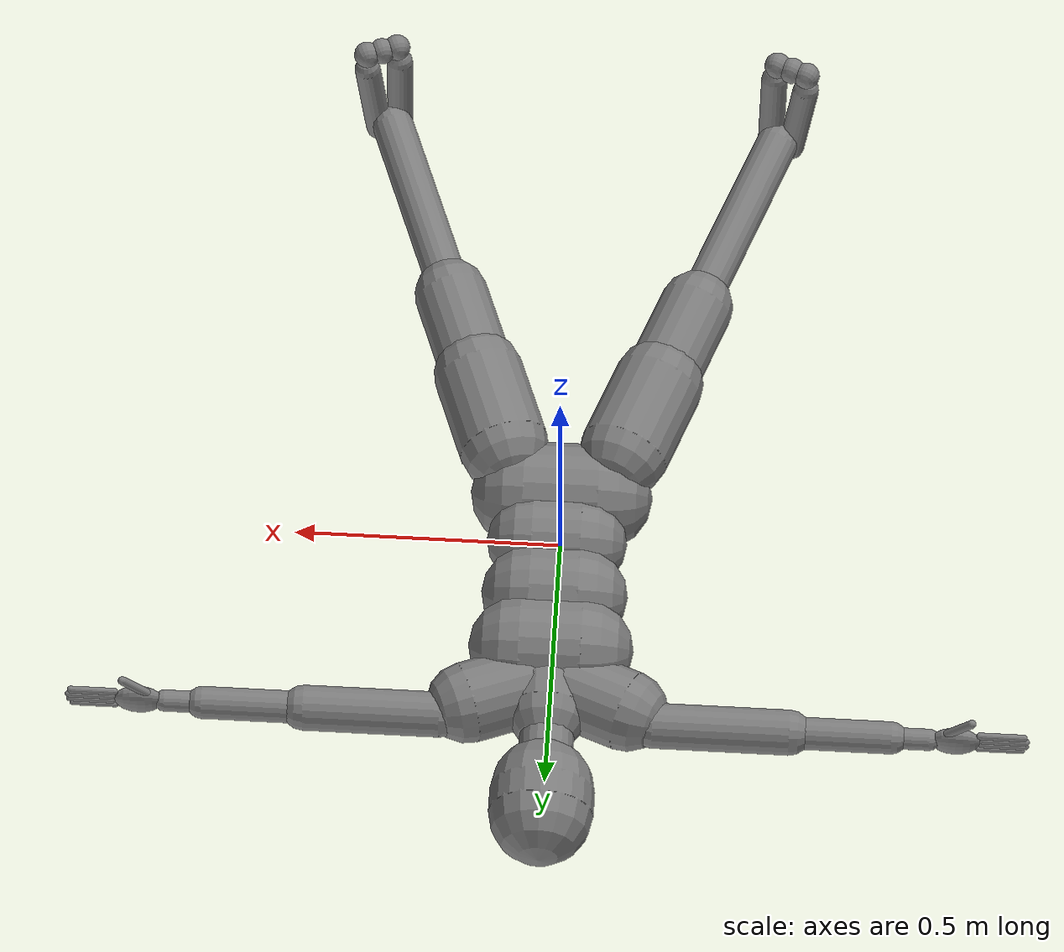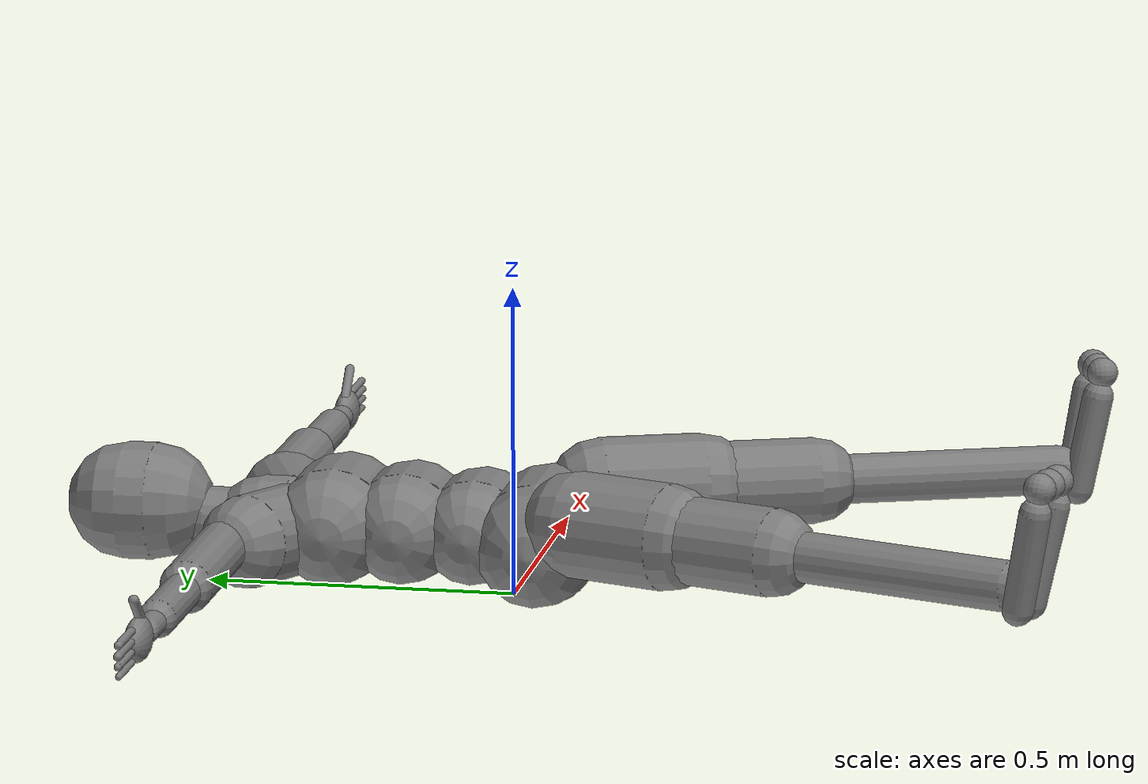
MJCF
<mujoco model="HumanoidCMU">
  <compiler angle="radian"/>

  <asset>
    <material name="self" rgba=".7 .5 .3 1"/>
  </asset>

  <default>
    <joint limited="true" solimplimit="0 0.99 0.01" stiffness="1" armature=".01" damping="1"/>
    <geom size="0.03 0 0" condim="1" friction="0.7 0.005 0.0001" solref="0.015 1" solimp="0.99 0.99 0.003"/>
    <general ctrllimited="true" ctrlrange="-1 1"/>
    <default class="humanoid">
      <geom type="capsule" group="2"/>
      <default class="stiff_medium">
        <joint stiffness="10" damping="2"/>
      </default>
      <default class="stiff_medium_higher">
        <joint stiffness="50" damping="4"/>
      </default>
      <default class="stiff_high">
        <joint stiffness="200" damping="5"/>
      </default>
      <default class="sensor_site">
        <site type="sphere" size="0.01" group="4" rgba="1 0 0 .5"/>
      </default>
      <default class="contact">
        <geom condim="3" friction="1. 0.005 0.0001" solref="0.015 1" solimp="0.98 0.98 0.001" priority="1"/>
      </default>
      <default class="tracking_site">
        <site type="sphere" size="0.027" rgba="1 0 0 1" group="3"/>
      </default>
    </default>
  </default>
  <worldbody>
    <body name="root" childclass="humanoid" pos="0 0 0.1">
      <light name="tracking_light" pos="0 0 7" dir="0 0 -1" mode="trackcom"/>
      <camera name="back" pos="0 3 1.4" xyaxes="-1 0 0 0 -1 2" mode="trackcom"/>
      <camera name="side" pos="-3 0 1.4" xyaxes="0 -1 0 1 0 2" mode="trackcom"/>
      <camera name="front_side" pos="-2 -2 0.5" xyaxes="0.5 -0.5 0 0.1 0.1 1" mode="trackcom"/>
      <camera name="bodycam" pos="0 .3 .1" xyaxes="-1 0 0 0 1 0" fovy="80"/>
      <site name="root" size="0.05" class="tracking_site" pos="0 -0.0121 0"/>
      <geom name="root_geom" size="0.1 0.07" pos="0 -0.05 0" quat="1 0 -1 0"/>
      <body name="lhipjoint">
        <geom name="lhipjoint" size="0.008 0.02187363" pos="0.0509685 -0.0459037 0.024723" quat="0.5708 -0.566602 -0.594264 0"/>
        <site class="tracking_site" name="tracking[lhip]" pos="0.07 -0.102 0.01"/>
        <body name="lfemur" pos="0.101937 -0.0918074 0.0494461" quat="0.984808 0 0 0.173648">
          <joint name="lfemurrz" pos="0 0 0" axis="0 0 1" range="-1.0472 1.22173" class="stiff_medium"/>
          <joint name="lfemurry" pos="0 0 0" axis="0 1 0" range="-1.22173 1.22173" class="stiff_medium"/>
          <joint name="lfemurrx" pos="0 0 0" axis="1 0 0" range="-2.79253 0.349066" class="stiff_medium"/>
          <geom name="lfemur_upper" size="0.085 0.083" pos="0 -0.115473 0" quat="0.696364 -0.696364 -0.122788 -0.122788" mass="0"/>
          <geom name="lfemur" size="0.07 0.182226" pos="0 -0.202473 0" quat="0.696364 -0.696364 -0.122788 -0.122788"/>
          <site class="tracking_site" name="tracking[ltibia]" pos="0.0 -0.385 0.0"/>
          <body name="ltibia" pos="0 -0.404945 0">
            <joint name="ltibiarx" pos="0 0 0" axis="1 0 0" range="0.01 2.96706"/>
            <geom name="ltibia" size="0.04 0.1825614" pos="0 -0.202846 0" quat="0.696364 -0.696364 -0.122788 -0.122788"/>
            <site class="tracking_site" name="tracking[lfoot]" pos="0.0 -0.385 0.0"/>
            <body name="lfoot" pos="0 -0.415693 0" quat="1 -1 0 0">
              <site name="lfoot_touch" type="capsule" pos="0.0 0.02 -0.015" size="0.025 0.01" zaxis="1 0 0" class="sensor_site"/>
              <joint name="lfootrz" pos="0 0 0" axis="0 0 1" range="-1.22173 0.349066" class="stiff_medium"/>
              <joint name="lfootrx" pos="0 0 0" axis="1 0 0" range="-0.785398 0.8" class="stiff_medium"/>
              <geom name="lfoot" size="0.025 0.08" pos="-0.0269999975006 -0.05 -0.0113878" quat=" 0.76725516 -0.64051114  0.02306487 -0.02306583" class="contact"/>
              <geom name="lfoot_ch" size="0.025 0.08" pos="0.0270000024994 -0.05 -0.0113878" quat=" 0.72887266 -0.59399462 -0.24074283 -0.2407425 " class="contact"/>
              <site class="tracking_site" name="tracking[ltoes]" pos="0.0 -0.136 -0.023"/>
              <body name="ltoes" pos="0 -0.156372 -0.0227756">
                <joint name="ltoesrx" pos="0 0 0" axis="1 0 0" range="-1.5708 0.349066"/>
                <geom name="ltoes0" type="sphere" size="0.025" pos="0 -0.01 -.01" class="contact"/>
                <geom name="ltoes1" type="sphere" size="0.025" pos=".03 -0.01 -.01" class="contact"/>
                <geom name="ltoes2" type="sphere" size="0.025" pos="-.03 -0.01 -.01" class="contact"/>
                <site name="ltoes_touch" type="capsule" pos="0.0 -0.01 -0.02" size="0.025 0.03" zaxis="1 0 0" class="sensor_site"/>
              </body>
            </body>
          </body>
        </body>
      </body>
      <body name="rhipjoint">
        <geom name="rhipjoint" size="0.008 0.02187363" pos="-0.0509685 -0.0459037 0.024723" quat="0.574856 -0.547594 0.608014 0"/>
        <site class="tracking_site" name="tracking[rhip]" pos="-0.07 -0.102 0.01"/>
        <body name="rfemur" pos="-0.101937 -0.0918074 0.0494461" quat="0.984808 0 0 -0.173648">
          <joint name="rfemurrz" pos="0 0 0" axis="0 0 1" range="-1.22173 1.0472" class="stiff_medium"/>
          <joint name="rfemurry" pos="0 0 0" axis="0 1 0" range="-1.22173 1.22173" class="stiff_medium"/>
          <joint name="rfemurrx" pos="0 0 0" axis="1 0 0" range="-2.79253 0.349066" class="stiff_medium"/>
          <geom name="rfemur_upper" size="0.085 0.083" pos="0 -0.115473 0" quat="0.696364 -0.696364 0.122788 0.122788" mass="0"/>
          <geom name="rfemur" size="0.07 0.182226" pos="0 -0.202473 0" quat="0.696364 -0.696364 0.122788 0.122788"/>
          <site class="tracking_site" name="tracking[rtibia]" pos="0.0 -0.385 0.0"/>
          <body name="rtibia" pos="0 -0.404945 0">
            <joint name="rtibiarx" pos="0 0 0" axis="1 0 0" range="0.01 2.96706"/>
            <geom name="rtibia" size="0.04 0.1825614" pos="0 -0.202846 0" quat="0.696364 -0.696364 0.122788 0.122788"/>
            <site class="tracking_site" name="tracking[rfoot]" pos="0.0 -0.385 0.0"/>
            <body name="rfoot" pos="0 -0.415693 0" quat="0.707107 -0.707107 0 0">
              <site name="rfoot_touch" type="capsule" pos="0.0 0.02 -0.015" size="0.025 0.01" zaxis="1 0 0" class="sensor_site"/>
              <joint name="rfootrz" pos="0 0 0" axis="0 0 1" range="-0.349066 1.22173" class="stiff_medium"/>
              <joint name="rfootrx" pos="0 0 0" axis="1 0 0" range="-0.785398 .8" class="stiff_medium"/>
              <geom name="rfoot" size="0.025 0.08" pos="-0.0269999965316 -0.05 -0.0113878" quat=" 0.73520687 -0.58633523  0.24050108  0.24050079" class="contact"/>
              <geom name="rfoot_ch" size="0.025 0.08" pos="0.0270000034684 -0.05 -0.0113878" quat=" 0.77312469 -0.633231   -0.02545846  0.02545836" class="contact"/>
              <site class="tracking_site" name="tracking[rtoes]" pos="0.0 -0.136 -0.023"/>
              <body name="rtoes" pos="0 -0.156372 -0.0227756">
                <joint name="rtoesrx" pos="0 0 0" axis="1 0 0" range="-1.5708 0.349066"/>
                <geom name="rtoes0" type="sphere" size="0.025" pos="0 -0.01 -.01" class="contact"/>
                <geom name="rtoes1" type="sphere" size="0.025" pos=".03 -0.01 -.01" class="contact"/>
                <geom name="rtoes2" type="sphere" size="0.025" pos="-.03 -0.01 -.01" class="contact"/>
                <site name="rtoes_touch" type="capsule" pos="0.0 -0.01 -0.02" size="0.025 0.03" zaxis="1 0 0" class="sensor_site"/>
              </body>
            </body>
          </body>
        </body>
      </body>
      <body name="lowerback">
        <joint name="lowerbackrz" pos="0 0 0" axis="0 0 1" range="-0.523599 0.523599" class="stiff_high"/>
        <joint name="lowerbackry" pos="0 0 0" axis="0 1 0" range="-0.523599 0.523599" class="stiff_high"/>
        <joint name="lowerbackrx" pos="0 0 0" axis="1 0 0" range="-0.349066 0.785398" class="stiff_medium"/>
        <geom name="lowerback" size="0.085 0.04540016" pos="0.00282931 0.0566065 0.01" quat="1 0 1 0"/>
        <body name="upperback" pos="0.000565862 0.113213 -0.00805298">
          <joint name="upperbackrz" pos="0 0 0" axis="0 0 1" range="-0.523599 0.523599" class="stiff_high"/>
          <joint name="upperbackry" pos="0 0 0" axis="0 1 0" range="-0.523599 0.523599" class="stiff_high"/>
          <joint name="upperbackrx" pos="0 0 0" axis="1 0 0" range="-0.349066 0.785398" class="stiff_medium"/>
          <geom name="upperback" size="0.09 0.04542616" pos="0.000256264 0.0567802 0.02" quat="1 0 1 0"/>
          <body name="thorax" pos="0.000512528 0.11356 0.000936821">
            <joint name="thoraxrz" pos="0 0 0" axis="0 0 1" range="-0.523599 0.523599" class="stiff_high"/>
            <joint name="thoraxry" pos="0 0 0" axis="0 1 0" range="-0.523599 0.523599" class="stiff_high"/>
            <joint name="thoraxrx" pos="0 0 0" axis="1 0 0" range="-0.349066 0.785398" class="stiff_medium"/>
            <geom name="thorax" size="0.095 0.0570206" pos="0 0.0569725 0.02" quat="1 0 1 0"/>
            <body name="lowerneck" pos="0 0.113945 0.00468037">
              <joint name="lowerneckrz" pos="0 0 0" axis="0 0 1" range="-0.523599 0.523599" class="stiff_medium_higher"/>
              <joint name="lowerneckry" pos="0 0 0" axis="0 1 0" range="-0.523599 0.523599" class="stiff_medium_higher"/>
              <joint name="lowerneckrx" pos="0 0 0" axis="1 0 0" range="-0.349066 0.785398" class="stiff_medium_higher"/>
              <geom name="lowerneck" size="0.075 0.02279225" pos="-0.00165071 0.0452401 0.00534359" quat="1 1 0 0"/>
              <body name="upperneck" pos="-0.00330143 0.0904801 0.0106872">
                <joint name="upperneckrz" pos="0 0 0" axis="0 0 1" range="-0.523599 0.523599" class="stiff_medium_higher"/>
                <joint name="upperneckry" pos="0 0 0" axis="0 1 0" range="-0.523599 0.523599" class="stiff_medium_higher"/>
                <joint name="upperneckrx" pos="0 0 0" axis="1 0 0" range="-0.349066 0.785398" class="stiff_medium_higher"/>
                <geom name="upperneck" size="0.05 0.0225272" pos="0.000500875 0.0449956 -0.00224644" quat="1 1 0 0"/>
                <body name="head" pos="0.00100175 0.13 -0.00449288">
                  <site class="tracking_site" name="tracking[head]" pos="0 0 0.1"/>
                  <camera name="egocentric" pos="0 0 0" xyaxes="-1 0 0 0 1 0" fovy="80"/>
                  <joint name="headrz" pos="0 0 0" axis="0 0 1" range="-0.523599 0.523599" class="stiff_medium_higher"/>
                  <joint name="headry" pos="0 0 0" axis="0 1 0" range="-0.523599 0.523599" class="stiff_medium_higher"/>
                  <joint name="headrx" pos="0 0 0" axis="1 0 0" range="-0.349066 0.785398" class="stiff_medium_higher"/>
                  <geom name="head" size="0.095 0.024104" pos="0.000341465 0.048184 0.025" quat="1 1 0 0"/>
                </body>
              </body>
            </body>
            <body name="lclavicle" pos="0 0.113945 0.00468037">
              <joint name="lclaviclerz" pos="0 0 0" axis="0 0 1" range="0 0.349066" class="stiff_high"/>
              <joint name="lclaviclery" pos="0 0 0" axis="0 1 0" range="-0.349066 0.174533" class="stiff_high"/>
              <geom name="lclavicle" size="0.075 0.06" pos="0.0918817 0.0382636 0.00535704" quat="0.688 0.279 -0.67 0"/>
              <site class="tracking_site" name="tracking[lhumerus]" pos="0.178 0.057 0.015"/>
              <body name="lhumerus" pos="0.18 0.09 0.0107141" quat="0.183013 0.683013 -0.683013 0.183013">
                <joint name="lhumerusrz" pos="0 0 0" axis="0 0 1" range="-1.1 1.5708" class="stiff_medium"/>
                <joint name="lhumerusry" pos="0 0 0" axis="0 1 0" range="-1.5708 1.5708" class="stiff_medium"/>
                <joint name="lhumerusrx" pos="0 0 0" axis="1 0 0" range="-1.0472 1.5708" class="stiff_medium"/>
                <site name="lhumerus_ft" class="sensor_site"/>
                <geom name="lhumerus" size="0.042 0.1245789" pos="0 -0.138421 0" quat="0.612372 -0.612372 0.353553 0.353553"/>
                <site class="tracking_site" name="tracking[lradius]" pos="0.0 -0.29 0.0"/>
                <body name="lradius" pos="0 -0.276843 0">
                  <joint name="lradiusrx" pos="0 0 0" axis="1 0 0" range="-0.174533 2.96706"/>
                  <geom name="lradius" size="0.03 0.08169111" pos="0 -0.0907679 0" quat="0.612372 -0.612372 0.353553 0.353553"/>
                  <site name="lwrist" pos="0 -0.181536 0" quat="-0.5 0 0.866025 0"/>
                  <body name="lwrist" pos="0 -0.181536 0" quat="-0.5 0 0.866025 0">
                    <joint name="lwristry" pos="0 0 0" axis="0 1 0" range="0 3.14159"/>
                    <geom name="lwrist" size="0.02 0.03" pos="0 -0.03 0" quat="1.59389e-11 -1.59388e-11 -0.707107 -0.707107"/>
                    <site class="tracking_site" name="tracking[lhand]" pos="0.0 -0.091 0.0"/>
                    <body name="lhand" pos="0 -0.0907676 0">
                      <joint name="lhandrz" pos="0 0 0" axis="0 0 1" range="-0.785398 0.785398"/>
                      <joint name="lhandrx" pos="0 0 0" axis="1 0 0" range="-1.5708 1.5708"/>
                      <site name="lhand_touch" size=".012 0.005 0.015" pos="0 -0.016752 -0.02" quat="0 0 -1 -1" type="ellipsoid" class="sensor_site"/>
                      <geom name="lhand" size="0.035 0.02 0.045" pos="0 -0.016752 0" quat="0 0 -1 -1" type="ellipsoid" class="contact"/>
                      <body name="lfingers" pos="0 -0.075 0">
                        <joint name="lfingersrx" pos="0 0.015 0" axis="1 0 0" range="0 1.5708"/>
                        <site name="lfingers_touch" type="box" size="0.023 0.013 0.003" pos="0 -0.042 -0.007" class="sensor_site"/>
                        <geom name="lfinger0" size="0.0065 0.04" pos="-.024 -0.025 0" quat="1 -1 0 0" class="contact"/>
                        <geom name="lfinger1" size="0.0065 0.04" pos="-.008 -0.03 0" quat="1 -1 0 0" class="contact"/>
                        <geom name="lfinger2" size="0.006 0.04" pos=".008 -0.03 0" quat="1 -1 0 0" class="contact"/>
                        <geom name="lfinger3" size="0.0055 0.04" pos=".024 -0.025 0" quat="1 -1 0 0" class="contact"/>
                      </body>
                      <body name="lthumb" pos="-.025 0 0" quat="0.92388 0 0 -0.382683">
                        <joint name="lthumbrz" pos="0 0 0" axis="0 0 1" range="-0.785398 0.785398"/>
                        <joint name="lthumbrx" pos="0 0 0" axis="1 0 0" range="0 1.57"/>
                        <site name="lthumb_touch" type="box" size="0.006 0.013 0.003" pos="0 -0.043 -0.007" class="sensor_site"/>
                        <geom name="lthumb" size="0.008 0.03" pos="0 -0.03 0" quat="0 0 -1 -1" class="contact"/>
                      </body>
                    </body>
                  </body>
                </body>
              </body>
            </body>
            <body name="rclavicle" pos="0 0.113945 0.00468037">
              <joint name="rclaviclerz" pos="0 0 0" axis="0 0 1" range="-0.349066 0" class="stiff_high"/>
              <joint name="rclaviclery" pos="0 0 0" axis="0 1 0" range="-0.174533 0.349066" class="stiff_high"/>
              <geom name="rclavicle" size="0.075 0.06" pos="-0.0918817 0.0382636 0.00535704" quat="0.688 0.279 0.67 0"/>
              <site class="tracking_site" name="tracking[rhumerus]" pos="-0.178 0.057 0.015"/>
              <body name="rhumerus" pos="-0.18 0.09 0.0107141" quat="0.183013 0.683013 0.683013 -0.183013">
                <joint name="rhumerusrz" pos="0 0 0" axis="0 0 1" range="-1.1 1.5708" class="stiff_medium"/>
                <joint name="rhumerusry" pos="0 0 0" axis="0 1 0" range="-1.5708 1.5708" class="stiff_medium"/>
                <joint name="rhumerusrx" pos="0 0 0" axis="1 0 0" range="-1.0472 1.5708" class="stiff_medium"/>
                <site name="rhumerus_ft" class="sensor_site"/>
                <geom name="rhumerus" size="0.042 0.1245789" pos="0 -0.138421 0" quat="0.612372 -0.612372 -0.353553 -0.353553"/>
                <site class="tracking_site" name="tracking[rradius]" pos="0.0 -0.29 0.0"/>
                <body name="rradius" pos="0 -0.276843 0">
                  <joint name="rradiusrx" pos="0 0 0" axis="1 0 0" range="-0.174533 2.96706"/>
                  <geom name="rradius" size="0.03 0.08169111" pos="0 -0.0907679 0" quat="0.61238 -0.612372 -0.353554 -0.353541"/>
                  <body name="rwrist" pos="0 -0.181536 0" quat="-0.5 0 -0.866025 0">
                    <joint name="rwristry" pos="0 0 0" axis="0 1 0" range="-3.14159 0"/>
                    <geom name="rwrist" size="0.02 0.03" pos="0 -0.03 0" quat="0 0 1 1"/>
                    <site class="tracking_site" name="tracking[rhand]" pos="0.0 -0.091 0.0"/>
                    <body name="rhand" pos="0 -0.0907676 0">
                      <joint name="rhandrz" pos="0 0 0" axis="0 0 1" range="-0.785398 0.785398"/>
                      <joint name="rhandrx" pos="0 0 0" axis="1 0 0" range="-1.5708 1.5708"/>
                      <site name="rhand_touch" size=".012 0.005 0.015" pos="0 -0.016752 -0.02" quat="0 0 1 1" type="ellipsoid" class="sensor_site"/>
                      <geom name="rhand" size="0.035 0.02 0.045" pos="0 -0.016752 0" quat="0 0 1 1" type="ellipsoid" class="contact"/>
                      <body name="rfingers" pos="0 -0.075 0">
                        <joint name="rfingersrx" pos="0 0.015 0" axis="1 0 0" range="0 1.5708"/>
                        <site name="rfingers_touch" type="box" size="0.023 0.013 0.003" pos="0 -0.042 -0.007" class="sensor_site"/>
                        <geom name="rfinger0" size="0.0065 0.04" pos=".024 -0.025 0" quat="1 -1 0 0" class="contact"/>
                        <geom name="rfinger1" size="0.0065 0.04" pos=".008 -0.03 0" quat="1 -1 0 0" class="contact"/>
                        <geom name="rfinger2" size="0.006 0.04" pos="-.008 -0.03 0" quat="1 -1 0 0" class="contact"/>
                        <geom name="rfinger3" size="0.0055 0.04" pos="-.024 -0.025 0" quat="1 -1 0 0" class="contact"/>
                      </body>
                      <body name="rthumb" pos=".025 0 0" quat="0.92388 0 0 0.382683">
                        <joint name="rthumbrz" pos="0 0 0" axis="0 0 1" range="-0.785398 0.785398"/>
                        <joint name="rthumbrx" pos="0 0 0" axis="1 0 0" range="0 1.57"/>
                        <site name="rthumb_touch" type="box" size="0.006 0.013 0.003" pos="0 -0.043 -0.007" class="sensor_site"/>
                        <geom name="rthumb" size="0.008 0.03" pos="0 -0.03 0" quat="6.21773e-11 -6.35284e-11 0.707107 0.707107" class="contact"/>
                      </body>
                    </body>
                  </body>
                </body>
              </body>
            </body>
          </body>
        </body>
      </body>
    </body>
  </worldbody>
  <contact>
    <exclude body1="lclavicle" body2="rclavicle"/>
    <exclude body1="lowerneck" body2="lclavicle"/>
    <exclude body1="lowerneck" body2="rclavicle"/>
    <exclude body1="upperneck" body2="lclavicle"/>
    <exclude body1="upperneck" body2="rclavicle"/>
  </contact>
  <actuator>
    <motor name="headrx" joint="headrx" gear="20"/>
    <motor name="headry" joint="headry" gear="20"/>
    <motor name="headrz" joint="headrz" gear="20"/>
    <motor name="lclaviclery" joint="lclaviclery" gear="20"/>
    <motor name="lclaviclerz" joint="lclaviclerz" gear="20"/>
    <motor name="lfemurrx" joint="lfemurrx" gear="120"/>
    <motor name="lfemurry" joint="lfemurry" gear="40"/>
    <motor name="lfemurrz" joint="lfemurrz" gear="40"/>
    <motor name="lfingersrx" joint="lfingersrx" gear="20"/>
    <motor name="lfootrx" joint="lfootrx" gear="20"/>
    <motor name="lfootrz" joint="lfootrz" gear="20"/>
    <motor name="lhandrx" joint="lhandrx" gear="20"/>
    <motor name="lhandrz" joint="lhandrz" gear="20"/>
    <motor name="lhumerusrx" joint="lhumerusrx" gear="40"/>
    <motor name="lhumerusry" joint="lhumerusry" gear="40"/>
    <motor name="lhumerusrz" joint="lhumerusrz" gear="40"/>
    <motor name="lowerbackrx" joint="lowerbackrx" gear="40"/>
    <motor name="lowerbackry" joint="lowerbackry" gear="40"/>
    <motor name="lowerbackrz" joint="lowerbackrz" gear="40"/>
    <motor name="lowerneckrx" joint="lowerneckrx" gear="20"/>
    <motor name="lowerneckry" joint="lowerneckry" gear="20"/>
    <motor name="lowerneckrz" joint="lowerneckrz" gear="20"/>
    <motor name="lradiusrx" joint="lradiusrx" gear="40"/>
    <motor name="lthumbrx" joint="lthumbrx" gear="20"/>
    <motor name="lthumbrz" joint="lthumbrz" gear="20"/>
    <motor name="ltibiarx" joint="ltibiarx" gear="80"/>
    <motor name="ltoesrx" joint="ltoesrx" gear="20"/>
    <motor name="lwristry" joint="lwristry" gear="20"/>
    <motor name="rclaviclery" joint="rclaviclery" gear="20"/>
    <motor name="rclaviclerz" joint="rclaviclerz" gear="20"/>
    <motor name="rfemurrx" joint="rfemurrx" gear="120"/>
    <motor name="rfemurry" joint="rfemurry" gear="40"/>
    <motor name="rfemurrz" joint="rfemurrz" gear="40"/>
    <motor name="rfingersrx" joint="rfingersrx" gear="20"/>
    <motor name="rfootrx" joint="rfootrx" gear="20"/>
    <motor name="rfootrz" joint="rfootrz" gear="20"/>
    <motor name="rhandrx" joint="rhandrx" gear="20"/>
    <motor name="rhandrz" joint="rhandrz" gear="20"/>
    <motor name="rhumerusrx" joint="rhumerusrx" gear="40"/>
    <motor name="rhumerusry" joint="rhumerusry" gear="40"/>
    <motor name="rhumerusrz" joint="rhumerusrz" gear="40"/>
    <motor name="rradiusrx" joint="rradiusrx" gear="40"/>
    <motor name="rthumbrx" joint="rthumbrx" gear="20"/>
    <motor name="rthumbrz" joint="rthumbrz" gear="20"/>
    <motor name="rtibiarx" joint="rtibiarx" gear="80"/>
    <motor name="rtoesrx" joint="rtoesrx" gear="20"/>
    <motor name="rwristry" joint="rwristry" gear="20"/>
    <motor name="thoraxrx" joint="thoraxrx" gear="40"/>
    <motor name="thoraxry" joint="thoraxry" gear="40"/>
    <motor name="thoraxrz" joint="thoraxrz" gear="40"/>
    <motor name="upperbackrx" joint="upperbackrx" gear="40"/>
    <motor name="upperbackry" joint="upperbackry" gear="40"/>
    <motor name="upperbackrz" joint="upperbackrz" gear="40"/>
    <motor name="upperneckrx" joint="upperneckrx" gear="20"/>
    <motor name="upperneckry" joint="upperneckry" gear="20"/>
    <motor name="upperneckrz" joint="upperneckrz" gear="20"/>
  </actuator>
</mujoco>
